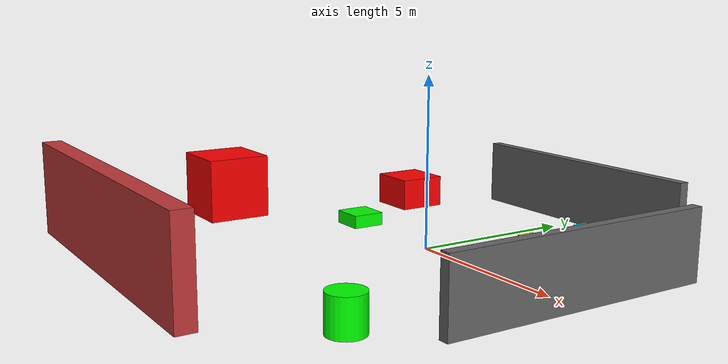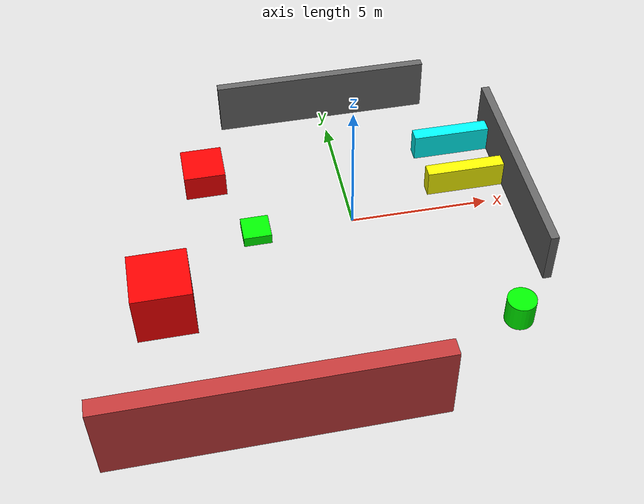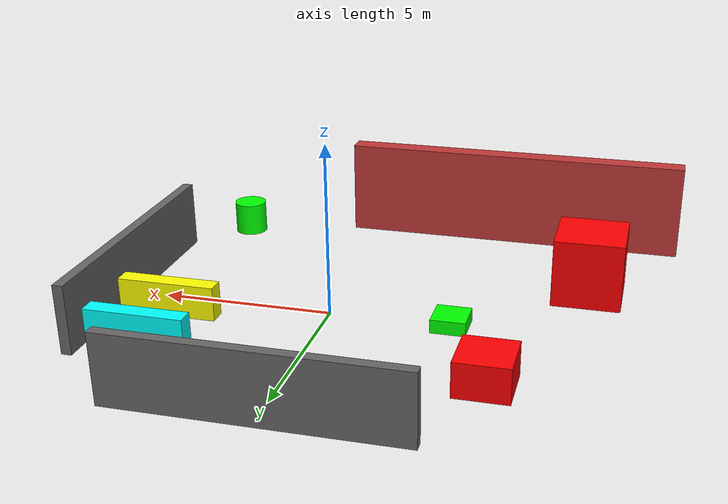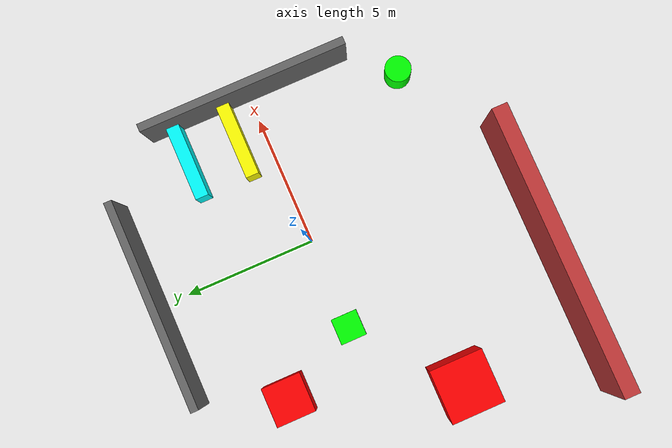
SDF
<?xml version="1.0" ?>
<sdf version="1.6">
  <model name="terrain">
    <static>true</static>

    <model name="low_obstacle">
      <pose>-3.5 0 0.2 0 0 0</pose>
      <link name="link">
        <collision name="collision">
          <geometry><box><size>1 1 0.4</size></box></geometry>
        </collision>
        <visual name="visual">
          <geometry><box><size>1 1 0.4</size></box></geometry>
          <material>
            <ambient>0 1 0 1</ambient>
            <diffuse>0 1 0 1</diffuse>
          </material>
        </visual>
      </link>
    </model>

    <model name="obstacle_2">
      <pose>4.5 -5.5 0.5 0 0 0</pose>
      <link name="link">
        <collision name="collision">
          <geometry><cylinder><radius>0.5</radius><length>1.0</length></cylinder></geometry>
        </collision>
        <visual name="visual">
          <geometry><cylinder><radius>0.5</radius><length>1.0</length></cylinder></geometry>
          <material>
            <ambient>0 1 0 1</ambient>
            <diffuse>0 1 0 1</diffuse>
          </material>
        </visual>
      </link>
    </model>

    <model name="wall_1">
      <pose>6 0 1 0 0 0</pose>
      <link name="link">
        <collision name="collision">
          <geometry><box><size>0.3 8 2</size></box></geometry>
        </collision>
        <visual name="visual">
          <geometry><box><size>0.3 8 2</size></box></geometry>
          <material>
            <ambient>0.4 0.4 0.4 1</ambient>
            <diffuse>0.4 0.4 0.4 1</diffuse>
          </material>
        </visual>
      </link>
    </model>

    <model name="wall_2">
      <pose>0 6 1 0 0 1.5708</pose>
      <link name="link">
        <collision name="collision">
          <geometry><box><size>0.3 8 2</size></box></geometry>
        </collision>
        <visual name="visual">
          <geometry><box><size>0.3 8 2</size></box></geometry>
          <material>
            <ambient>0.4 0.4 0.4 1</ambient>
            <diffuse>0.4 0.4 0.4 1</diffuse>
          </material>
        </visual>
      </link>
    </model>

    <model name="wall_3">
      <pose>-4 -8 1 0 0 1.5708</pose>
      <link name="link">
        <collision name="collision">
          <geometry><box><size>0.6 11 3</size></box></geometry>
        </collision>
        <visual name="visual">
          <geometry><box><size>0.6 11 3</size></box></geometry>
          <material>
            <ambient>0.76 0.22 0.22 1</ambient>
            <diffuse>0.76 0.22 0.22 1</diffuse>
          </material>
        </visual>
      </link>
    </model>

    <model name="medium_box">
      <pose>-5 3 0.5 0 0 0</pose>
      <link name="link">
        <collision name="collision">
          <geometry><box><size>1.5 1.5 1</size></box></geometry>
        </collision>
        <visual name="visual">
          <geometry><box><size>1.5 1.5 1</size></box></geometry>
          <material>
            <ambient>1 0 0 1</ambient>
            <diffuse>1 0 0 1</diffuse>
          </material>
        </visual>
      </link>
    </model>

    <model name="big_box">
      <pose>-7 -3 1 0 0 0</pose>
      <link name="link">
        <collision name="collision">
          <geometry><box><size>2 2 2</size></box></geometry>
        </collision>
        <visual name="visual">
          <geometry><box><size>2 2 2</size></box></geometry>
          <material>
            <ambient>1 0 0 1</ambient>
            <diffuse>1 0 0 1</diffuse>
          </material>
        </visual>
      </link>
    </model>

    <model name="wall_left">
      <pose>4.5 1 0.5 0 0 1.5708</pose>
      <link name="link">
        <collision name="collision">
          <geometry><box><size>0.5 3 1</size></box></geometry>
        </collision>
        <visual name="visual">
          <geometry><box><size>0.5 3 1</size></box></geometry>
          <material>
            <ambient>1 1 0 1</ambient>
            <diffuse>1 1 0 1</diffuse>
          </material>
        </visual>
      </link>
    </model>

    <model name="wall_right">
      <pose>4.5 3 0.5 0 0 1.5708</pose>
      <link name="link">
        <collision name="collision">
          <geometry><box><size>0.5 3 1</size></box></geometry>
        </collision>
        <visual name="visual">
          <geometry><box><size>0.5 3 1</size></box></geometry>
          <material>
            <ambient>0 1 1 1</ambient>
            <diffuse>0 1 1 1</diffuse>
          </material>
        </visual>
      </link>
    </model>

  </model>
</sdf>
